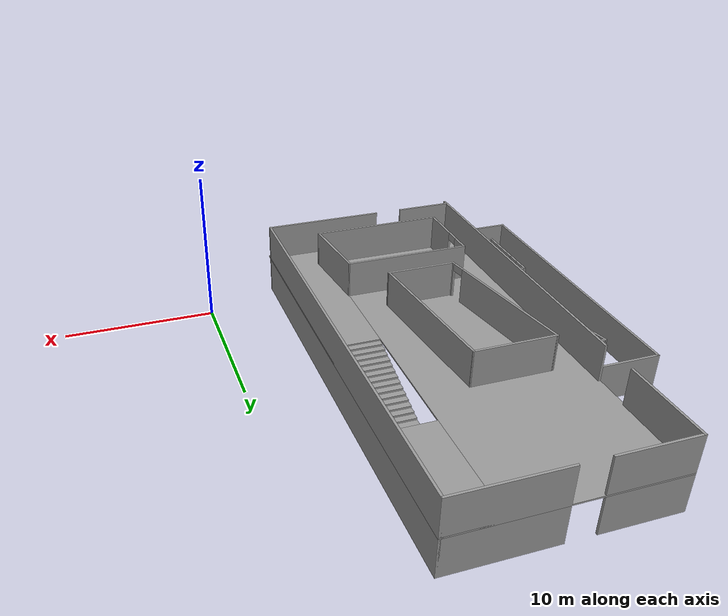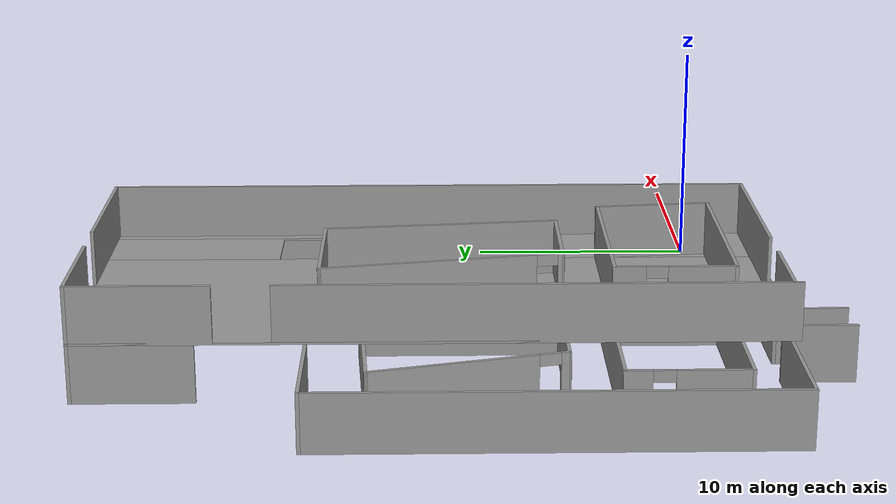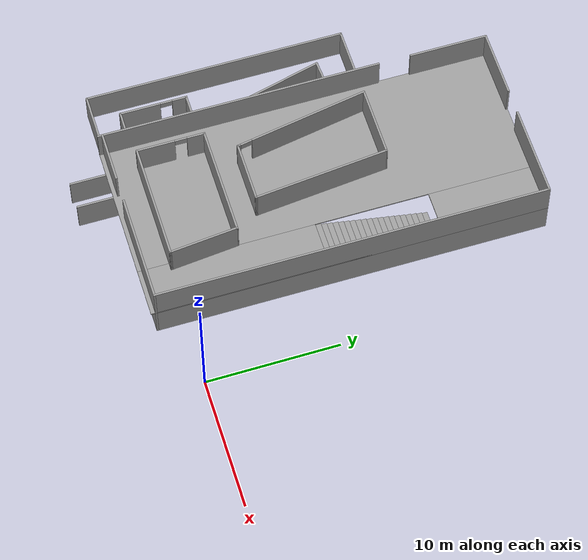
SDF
<?xml version='1.0'?>
<sdf version='1.6'>
  <model name='Building_37'>
    <pose frame=''>-14.375 11 0 0 -0 0</pose>
          <meta>
            <layer>0</layer>
          </meta>
    <link name='Floor_0'>
      <pose frame=''>2.5 1.3455 2.5 0 -0 0</pose>
      <visual name='Floor_0_Visual_0'>
        <pose frame=''>-1.7875 0 0.05 0 -0 0</pose>
        <geometry>
          <box>
            <size>10.325 29.459 0.1</size>
          </box>
        </geometry>
        <material>
          <script>
            <uri>file://media/materials/scripts/gazebo.material</uri>
            <name>Gazebo/Grey</name>
          </script>
          <ambient>1 1 1 1</ambient>
        </material>
      </visual>
      <collision name='Floor_0_Collision_0'>
        <geometry>
          <box>
            <size>10.325 29.459 0.1</size>
          </box>
        </geometry>
        <pose frame=''>-1.7875 0 0.05 0 -0 0</pose>
      </collision>
      <visual name='Floor_0_Visual_1'>
        <pose frame=''>5.1625 -8.1625 0.05 0 -0 0</pose>
        <geometry>
          <box>
            <size>3.575 13.134 0.1</size>
          </box>
        </geometry>
        <material>
          <script>
            <uri>file://media/materials/scripts/gazebo.material</uri>
            <name>Gazebo/Grey</name>
          </script>
          <ambient>1 1 1 1</ambient>
        </material>
      </visual>
      <collision name='Floor_0_Collision_1'>
        <geometry>
          <box>
            <size>3.575 13.134 0.1</size>
          </box>
        </geometry>
        <pose frame=''>5.1625 -8.1625 0.05 0 -0 0</pose>
      </collision>
      <visual name='Floor_0_Visual_2'>
        <pose frame=''>6.6625 6.567 0.05 0 -0 0</pose>
        <geometry>
          <box>
            <size>0.575 16.325 0.1</size>
          </box>
        </geometry>
        <material>
          <script>
            <uri>file://media/materials/scripts/gazebo.material</uri>
            <name>Gazebo/Grey</name>
          </script>
          <ambient>1 1 1 1</ambient>
        </material>
      </visual>
      <collision name='Floor_0_Collision_2'>
        <geometry>
          <box>
            <size>0.575 16.325 0.1</size>
          </box>
        </geometry>
        <pose frame=''>6.6625 6.567 0.05 0 -0 0</pose>
      </collision>
      <visual name='Floor_0_Visual_3'>
        <pose frame=''>4.875 10.817 0.05 0 -0 0</pose>
        <geometry>
          <box>
            <size>3 7.825 0.1</size>
          </box>
        </geometry>
        <material>
          <script>
            <uri>file://media/materials/scripts/gazebo.material</uri>
            <name>Gazebo/Grey</name>
          </script>
          <ambient>1 1 1 1</ambient>
        </material>
      </visual>
      <collision name='Floor_0_Collision_3'>
        <geometry>
          <box>
            <size>3 7.825 0.1</size>
          </box>
        </geometry>
        <pose frame=''>4.875 10.817 0.05 0 -0 0</pose>
      </collision>
    </link>
    <link name='Stairs_1'>
      <visual name='Stairs_1_Visual_0'>
        <pose frame=''>7.375 8.0375 0.0625 0 -0 0</pose>
        <geometry>
          <box>
            <size>3 0.425 0.125</size>
          </box>
        </geometry>
        <material>
          <script>
            <uri>file://media/materials/scripts/gazebo.material</uri>
            <name>Gazebo/Grey</name>
          </script>
          <ambient>1 1 1 1</ambient>
        </material>
      </visual>
      <collision name='Stairs_1_Collision_0'>
        <geometry>
          <box>
            <size>3 0.425 0.125</size>
          </box>
        </geometry>
        <pose frame=''>7.375 8.0375 0.0625 0 -0 0</pose>
      </collision>
      <visual name='Stairs_1_Visual_1'>
        <pose frame=''>7.375 7.6125 0.1875 0 -0 0</pose>
        <geometry>
          <box>
            <size>3 0.425 0.125</size>
          </box>
        </geometry>
        <material>
          <script>
            <uri>file://media/materials/scripts/gazebo.material</uri>
            <name>Gazebo/Grey</name>
          </script>
          <ambient>1 1 1 1</ambient>
        </material>
      </visual>
      <collision name='Stairs_1_Collision_1'>
        <geometry>
          <box>
            <size>3 0.425 0.125</size>
          </box>
        </geometry>
        <pose frame=''>7.375 7.6125 0.1875 0 -0 0</pose>
      </collision>
      <visual name='Stairs_1_Visual_2'>
        <pose frame=''>7.375 7.1875 0.3125 0 -0 0</pose>
        <geometry>
          <box>
            <size>3 0.425 0.125</size>
          </box>
        </geometry>
        <material>
          <script>
            <uri>file://media/materials/scripts/gazebo.material</uri>
            <name>Gazebo/Grey</name>
          </script>
          <ambient>1 1 1 1</ambient>
        </material>
      </visual>
      <collision name='Stairs_1_Collision_2'>
        <geometry>
          <box>
            <size>3 0.425 0.125</size>
          </box>
        </geometry>
        <pose frame=''>7.375 7.1875 0.3125 0 -0 0</pose>
      </collision>
      <visual name='Stairs_1_Visual_3'>
        <pose frame=''>7.375 6.7625 0.4375 0 -0 0</pose>
        <geometry>
          <box>
            <size>3 0.425 0.125</size>
          </box>
        </geometry>
        <material>
          <script>
            <uri>file://media/materials/scripts/gazebo.material</uri>
            <name>Gazebo/Grey</name>
          </script>
          <ambient>1 1 1 1</ambient>
        </material>
      </visual>
      <collision name='Stairs_1_Collision_3'>
        <geometry>
          <box>
            <size>3 0.425 0.125</size>
          </box>
        </geometry>
        <pose frame=''>7.375 6.7625 0.4375 0 -0 0</pose>
      </collision>
      <visual name='Stairs_1_Visual_4'>
        <pose frame=''>7.375 6.3375 0.5625 0 -0 0</pose>
        <geometry>
          <box>
            <size>3 0.425 0.125</size>
          </box>
        </geometry>
        <material>
          <script>
            <uri>file://media/materials/scripts/gazebo.material</uri>
            <name>Gazebo/Grey</name>
          </script>
          <ambient>1 1 1 1</ambient>
        </material>
      </visual>
      <collision name='Stairs_1_Collision_4'>
        <geometry>
          <box>
            <size>3 0.425 0.125</size>
          </box>
        </geometry>
        <pose frame=''>7.375 6.3375 0.5625 0 -0 0</pose>
      </collision>
      <visual name='Stairs_1_Visual_5'>
        <pose frame=''>7.375 5.9125 0.6875 0 -0 0</pose>
        <geometry>
          <box>
            <size>3 0.425 0.125</size>
          </box>
        </geometry>
        <material>
          <script>
            <uri>file://media/materials/scripts/gazebo.material</uri>
            <name>Gazebo/Grey</name>
          </script>
          <ambient>1 1 1 1</ambient>
        </material>
      </visual>
      <collision name='Stairs_1_Collision_5'>
        <geometry>
          <box>
            <size>3 0.425 0.125</size>
          </box>
        </geometry>
        <pose frame=''>7.375 5.9125 0.6875 0 -0 0</pose>
      </collision>
      <visual name='Stairs_1_Visual_6'>
        <pose frame=''>7.375 5.4875 0.8125 0 -0 0</pose>
        <geometry>
          <box>
            <size>3 0.425 0.125</size>
          </box>
        </geometry>
        <material>
          <script>
            <uri>file://media/materials/scripts/gazebo.material</uri>
            <name>Gazebo/Grey</name>
          </script>
          <ambient>1 1 1 1</ambient>
        </material>
      </visual>
      <collision name='Stairs_1_Collision_6'>
        <geometry>
          <box>
            <size>3 0.425 0.125</size>
          </box>
        </geometry>
        <pose frame=''>7.375 5.4875 0.8125 0 -0 0</pose>
      </collision>
      <visual name='Stairs_1_Visual_7'>
        <pose frame=''>7.375 5.0625 0.9375 0 -0 0</pose>
        <geometry>
          <box>
            <size>3 0.425 0.125</size>
          </box>
        </geometry>
        <material>
          <script>
            <uri>file://media/materials/scripts/gazebo.material</uri>
            <name>Gazebo/Grey</name>
          </script>
          <ambient>1 1 1 1</ambient>
        </material>
      </visual>
      <collision name='Stairs_1_Collision_7'>
        <geometry>
          <box>
            <size>3 0.425 0.125</size>
          </box>
        </geometry>
        <pose frame=''>7.375 5.0625 0.9375 0 -0 0</pose>
      </collision>
      <visual name='Stairs_1_Visual_8'>
        <pose frame=''>7.375 4.6375 1.0625 0 -0 0</pose>
        <geometry>
          <box>
            <size>3 0.425 0.125</size>
          </box>
        </geometry>
        <material>
          <script>
            <uri>file://media/materials/scripts/gazebo.material</uri>
            <name>Gazebo/Grey</name>
          </script>
          <ambient>1 1 1 1</ambient>
        </material>
      </visual>
      <collision name='Stairs_1_Collision_8'>
        <geometry>
          <box>
            <size>3 0.425 0.125</size>
          </box>
        </geometry>
        <pose frame=''>7.375 4.6375 1.0625 0 -0 0</pose>
      </collision>
      <visual name='Stairs_1_Visual_9'>
        <pose frame=''>7.375 4.2125 1.1875 0 -0 0</pose>
        <geometry>
          <box>
            <size>3 0.425 0.125</size>
          </box>
        </geometry>
        <material>
          <script>
            <uri>file://media/materials/scripts/gazebo.material</uri>
            <name>Gazebo/Grey</name>
          </script>
          <ambient>1 1 1 1</ambient>
        </material>
      </visual>
      <collision name='Stairs_1_Collision_9'>
        <geometry>
          <box>
            <size>3 0.425 0.125</size>
          </box>
        </geometry>
        <pose frame=''>7.375 4.2125 1.1875 0 -0 0</pose>
      </collision>
      <visual name='Stairs_1_Visual_10'>
        <pose frame=''>7.375 3.7875 1.3125 0 -0 0</pose>
        <geometry>
          <box>
            <size>3 0.425 0.125</size>
          </box>
        </geometry>
        <material>
          <script>
            <uri>file://media/materials/scripts/gazebo.material</uri>
            <name>Gazebo/Grey</name>
          </script>
          <ambient>1 1 1 1</ambient>
        </material>
      </visual>
      <collision name='Stairs_1_Collision_10'>
        <geometry>
          <box>
            <size>3 0.425 0.125</size>
          </box>
        </geometry>
        <pose frame=''>7.375 3.7875 1.3125 0 -0 0</pose>
      </collision>
      <visual name='Stairs_1_Visual_11'>
        <pose frame=''>7.375 3.3625 1.4375 0 -0 0</pose>
        <geometry>
          <box>
            <size>3 0.425 0.125</size>
          </box>
        </geometry>
        <material>
          <script>
            <uri>file://media/materials/scripts/gazebo.material</uri>
            <name>Gazebo/Grey</name>
          </script>
          <ambient>1 1 1 1</ambient>
        </material>
      </visual>
      <collision name='Stairs_1_Collision_11'>
        <geometry>
          <box>
            <size>3 0.425 0.125</size>
          </box>
        </geometry>
        <pose frame=''>7.375 3.3625 1.4375 0 -0 0</pose>
      </collision>
      <visual name='Stairs_1_Visual_12'>
        <pose frame=''>7.375 2.9375 1.5625 0 -0 0</pose>
        <geometry>
          <box>
            <size>3 0.425 0.125</size>
          </box>
        </geometry>
        <material>
          <script>
            <uri>file://media/materials/scripts/gazebo.material</uri>
            <name>Gazebo/Grey</name>
          </script>
          <ambient>1 1 1 1</ambient>
        </material>
      </visual>
      <collision name='Stairs_1_Collision_12'>
        <geometry>
          <box>
            <size>3 0.425 0.125</size>
          </box>
        </geometry>
        <pose frame=''>7.375 2.9375 1.5625 0 -0 0</pose>
      </collision>
      <visual name='Stairs_1_Visual_13'>
        <pose frame=''>7.375 2.5125 1.6875 0 -0 0</pose>
        <geometry>
          <box>
            <size>3 0.425 0.125</size>
          </box>
        </geometry>
        <material>
          <script>
            <uri>file://media/materials/scripts/gazebo.material</uri>
            <name>Gazebo/Grey</name>
          </script>
          <ambient>1 1 1 1</ambient>
        </material>
      </visual>
      <collision name='Stairs_1_Collision_13'>
        <geometry>
          <box>
            <size>3 0.425 0.125</size>
          </box>
        </geometry>
        <pose frame=''>7.375 2.5125 1.6875 0 -0 0</pose>
      </collision>
      <visual name='Stairs_1_Visual_14'>
        <pose frame=''>7.375 2.0875 1.8125 0 -0 0</pose>
        <geometry>
          <box>
            <size>3 0.425 0.125</size>
          </box>
        </geometry>
        <material>
          <script>
            <uri>file://media/materials/scripts/gazebo.material</uri>
            <name>Gazebo/Grey</name>
          </script>
          <ambient>1 1 1 1</ambient>
        </material>
      </visual>
      <collision name='Stairs_1_Collision_14'>
        <geometry>
          <box>
            <size>3 0.425 0.125</size>
          </box>
        </geometry>
        <pose frame=''>7.375 2.0875 1.8125 0 -0 0</pose>
      </collision>
      <visual name='Stairs_1_Visual_15'>
        <pose frame=''>7.375 1.6625 1.9375 0 -0 0</pose>
        <geometry>
          <box>
            <size>3 0.425 0.125</size>
          </box>
        </geometry>
        <material>
          <script>
            <uri>file://media/materials/scripts/gazebo.material</uri>
            <name>Gazebo/Grey</name>
          </script>
          <ambient>1 1 1 1</ambient>
        </material>
      </visual>
      <collision name='Stairs_1_Collision_15'>
        <geometry>
          <box>
            <size>3 0.425 0.125</size>
          </box>
        </geometry>
        <pose frame=''>7.375 1.6625 1.9375 0 -0 0</pose>
      </collision>
      <visual name='Stairs_1_Visual_16'>
        <pose frame=''>7.375 1.2375 2.0625 0 -0 0</pose>
        <geometry>
          <box>
            <size>3 0.425 0.125</size>
          </box>
        </geometry>
        <material>
          <script>
            <uri>file://media/materials/scripts/gazebo.material</uri>
            <name>Gazebo/Grey</name>
          </script>
          <ambient>1 1 1 1</ambient>
        </material>
      </visual>
      <collision name='Stairs_1_Collision_16'>
        <geometry>
          <box>
            <size>3 0.425 0.125</size>
          </box>
        </geometry>
        <pose frame=''>7.375 1.2375 2.0625 0 -0 0</pose>
      </collision>
      <visual name='Stairs_1_Visual_17'>
        <pose frame=''>7.375 0.8125 2.1875 0 -0 0</pose>
        <geometry>
          <box>
            <size>3 0.425 0.125</size>
          </box>
        </geometry>
        <material>
          <script>
            <uri>file://media/materials/scripts/gazebo.material</uri>
            <name>Gazebo/Grey</name>
          </script>
          <ambient>1 1 1 1</ambient>
        </material>
      </visual>
      <collision name='Stairs_1_Collision_17'>
        <geometry>
          <box>
            <size>3 0.425 0.125</size>
          </box>
        </geometry>
        <pose frame=''>7.375 0.8125 2.1875 0 -0 0</pose>
      </collision>
      <visual name='Stairs_1_Visual_18'>
        <pose frame=''>7.375 0.3875 2.3125 0 -0 0</pose>
        <geometry>
          <box>
            <size>3 0.425 0.125</size>
          </box>
        </geometry>
        <material>
          <script>
            <uri>file://media/materials/scripts/gazebo.material</uri>
            <name>Gazebo/Grey</name>
          </script>
          <ambient>1 1 1 1</ambient>
        </material>
      </visual>
      <collision name='Stairs_1_Collision_18'>
        <geometry>
          <box>
            <size>3 0.425 0.125</size>
          </box>
        </geometry>
        <pose frame=''>7.375 0.3875 2.3125 0 -0 0</pose>
      </collision>
      <visual name='Stairs_1_Visual_19'>
        <pose frame=''>7.375 -0.037501 2.4375 0 -0 0</pose>
        <geometry>
          <box>
            <size>3 0.425 0.125</size>
          </box>
        </geometry>
        <material>
          <script>
            <uri>file://media/materials/scripts/gazebo.material</uri>
            <name>Gazebo/Grey</name>
          </script>
          <ambient>1 1 1 1</ambient>
        </material>
      </visual>
      <collision name='Stairs_1_Collision_19'>
        <geometry>
          <box>
            <size>3 0.425 0.125</size>
          </box>
        </geometry>
        <pose frame=''>7.375 -0.037501 2.4375 0 -0 0</pose>
      </collision>
    </link>
    <link name='Wall_10'>
      <collision name='Wall_10_Collision'>
        <geometry>
          <box>
            <size>19.65 0.15 2.5</size>
          </box>
        </geometry>
        <pose frame=''>0 0 1.25 0 -0 0</pose>
      </collision>
      <visual name='Wall_10_Visual'>
        <pose frame=''>0 0 1.25 0 -0 0</pose>
        <geometry>
          <box>
            <size>19.65 0.15 2.5</size>
          </box>
        </geometry>
        <material>
          <script>
            <uri>file://media/materials/scripts/gazebo.material</uri>
            <name>Gazebo/Grey</name>
          </script>
          <ambient>1 1 1 1</ambient>
        </material>
      </visual>
      <pose frame=''>-9.375 -3.25 0 0 0 -1.5708</pose>
    </link>
    <link name='Wall_14'>
      <pose frame=''>-6.375 0 0 0 0 -1.32582</pose>
      <visual name='Wall_14_Visual_0'>
        <pose frame=''>-0.663599 0 1.25 0 -0 0</pose>
        <geometry>
          <box>
            <size>7.06901 0.15 2.5</size>
          </box>
        </geometry>
        <material>
          <script>
            <uri>file://media/materials/scripts/gazebo.material</uri>
            <name>Gazebo/Grey</name>
          </script>
          <ambient>1 1 1 1</ambient>
        </material>
      </visual>
      <collision name='Wall_14_Collision_0'>
        <geometry>
          <box>
            <size>7.06901 0.15 2.5</size>
          </box>
        </geometry>
        <pose frame=''>-0.663599 0 1.25 0 -0 0</pose>
      </collision>
      <visual name='Wall_14_Visual_1'>
        <pose frame=''>3.98451 0 1.25 0 -0 0</pose>
        <geometry>
          <box>
            <size>0.427197 0.15 2.5</size>
          </box>
        </geometry>
        <material>
          <script>
            <uri>file://media/materials/scripts/gazebo.material</uri>
            <name>Gazebo/Grey</name>
          </script>
          <ambient>1 1 1 1</ambient>
        </material>
      </visual>
      <collision name='Wall_14_Collision_1'>
        <geometry>
          <box>
            <size>0.427197 0.15 2.5</size>
          </box>
        </geometry>
        <pose frame=''>3.98451 0 1.25 0 -0 0</pose>
      </collision>
      <visual name='Wall_14_Visual_2'>
        <pose frame=''>3.32091 0 2.25 0 -0 0</pose>
        <geometry>
          <box>
            <size>0.9 0.15 0.5</size>
          </box>
        </geometry>
        <material>
          <script>
            <uri>file://media/materials/scripts/gazebo.material</uri>
            <name>Gazebo/Grey</name>
          </script>
          <ambient>1 1 1 1</ambient>
        </material>
      </visual>
      <collision name='Wall_14_Collision_2'>
        <geometry>
          <box>
            <size>0.9 0.15 0.5</size>
          </box>
        </geometry>
        <pose frame=''>3.32091 0 2.25 0 -0 0</pose>
      </collision>
    </link>
    <link name='Wall_15'>
      <collision name='Wall_15_Collision'>
        <geometry>
          <box>
            <size>6.15 0.15 2.5</size>
          </box>
        </geometry>
        <pose frame=''>0 0 1.25 0 -0 0</pose>
      </collision>
      <visual name='Wall_15_Visual'>
        <pose frame=''>0 0 1.25 0 -0 0</pose>
        <geometry>
          <box>
            <size>6.15 0.15 2.5</size>
          </box>
        </geometry>
        <material>
          <script>
            <uri>file://media/materials/scripts/gazebo.material</uri>
            <name>Gazebo/Grey</name>
          </script>
          <ambient>1 1 1 1</ambient>
        </material>
      </visual>
      <pose frame=''>-2.375 -4 0 0 -0 0</pose>
    </link>
    <link name='Wall_16'>
      <collision name='Wall_16_Collision'>
        <geometry>
          <box>
            <size>8.65 0.15 2.5</size>
          </box>
        </geometry>
        <pose frame=''>0 0 1.25 0 -0 0</pose>
      </collision>
      <visual name='Wall_16_Visual'>
        <pose frame=''>0 0 1.25 0 -0 0</pose>
        <geometry>
          <box>
            <size>8.65 0.15 2.5</size>
          </box>
        </geometry>
        <material>
          <script>
            <uri>file://media/materials/scripts/gazebo.material</uri>
            <name>Gazebo/Grey</name>
          </script>
          <ambient>1 1 1 1</ambient>
        </material>
      </visual>
      <pose frame=''>0.625 0.25 0 0 -0 1.5708</pose>
    </link>
    <link name='Wall_17'>
      <collision name='Wall_17_Collision'>
        <geometry>
          <box>
            <size>8.16561 0.15 2.5</size>
          </box>
        </geometry>
        <pose frame=''>0 0 1.25 0 -0 0</pose>
      </collision>
      <visual name='Wall_17_Visual'>
        <pose frame=''>0 0 1.25 0 -0 0</pose>
        <geometry>
          <box>
            <size>8.16561 0.15 2.5</size>
          </box>
        </geometry>
        <material>
          <script>
            <uri>file://media/materials/scripts/gazebo.material</uri>
            <name>Gazebo/Grey</name>
          </script>
          <ambient>1 1 1 1</ambient>
        </material>
      </visual>
      <pose frame=''>-3.375 4.25 0 0 0 -3.07917</pose>
    </link>
    <link name='Wall_19'>
      <collision name='Wall_19_Collision'>
        <geometry>
          <box>
            <size>9.15 0.15 2.5</size>
          </box>
        </geometry>
        <pose frame=''>0 0 1.25 0 -0 0</pose>
      </collision>
      <visual name='Wall_19_Visual'>
        <pose frame=''>0 0 1.25 0 -0 0</pose>
        <geometry>
          <box>
            <size>9.15 0.15 2.5</size>
          </box>
        </geometry>
        <material>
          <script>
            <uri>file://media/materials/scripts/gazebo.material</uri>
            <name>Gazebo/Grey</name>
          </script>
          <ambient>1 1 1 1</ambient>
        </material>
      </visual>
      <pose frame=''>-2.875 -6 0 0 -0 0</pose>
    </link>
    <link name='Wall_2'>
      <collision name='Wall_2_Collision'>
        <geometry>
          <box>
            <size>5.15 0.15 2.5</size>
          </box>
        </geometry>
        <pose frame=''>0 0 1.25 0 -0 0</pose>
      </collision>
      <visual name='Wall_2_Visual'>
        <pose frame=''>0 0 1.25 0 -0 0</pose>
        <geometry>
          <box>
            <size>5.15 0.15 2.5</size>
          </box>
        </geometry>
        <material>
          <script>
            <uri>file://media/materials/scripts/gazebo.material</uri>
            <name>Gazebo/Grey</name>
          </script>
          <ambient>1 1 1 1</ambient>
        </material>
      </visual>
      <pose frame=''>-4.375 13.5 0 0 0 -1.5708</pose>
    </link>
    <link name='Wall_20'>
      <collision name='Wall_20_Collision'>
        <geometry>
          <box>
            <size>5.15 0.15 2.5</size>
          </box>
        </geometry>
        <pose frame=''>0 0 1.25 0 -0 0</pose>
      </collision>
      <visual name='Wall_20_Visual'>
        <pose frame=''>0 0 1.25 0 -0 0</pose>
        <geometry>
          <box>
            <size>5.15 0.15 2.5</size>
          </box>
        </geometry>
        <material>
          <script>
            <uri>file://media/materials/scripts/gazebo.material</uri>
            <name>Gazebo/Grey</name>
          </script>
          <ambient>1 1 1 1</ambient>
        </material>
      </visual>
      <pose frame=''>1.625 -8.5 0 0 0 -1.5708</pose>
    </link>
    <link name='Wall_21'>
      <collision name='Wall_21_Collision'>
        <geometry>
          <box>
            <size>9.15 0.15 2.5</size>
          </box>
        </geometry>
        <pose frame=''>0 0 1.25 0 -0 0</pose>
      </collision>
      <visual name='Wall_21_Visual'>
        <pose frame=''>0 0 1.25 0 -0 0</pose>
        <geometry>
          <box>
            <size>9.15 0.15 2.5</size>
          </box>
        </geometry>
        <material>
          <script>
            <uri>file://media/materials/scripts/gazebo.material</uri>
            <name>Gazebo/Grey</name>
          </script>
          <ambient>1 1 1 1</ambient>
        </material>
      </visual>
      <pose frame=''>-2.875 -11 0 0 -0 3.14159</pose>
    </link>
    <link name='Wall_22'>
      <pose frame=''>-7.375 -8.5 0 0 -0 1.5708</pose>
      <visual name='Wall_22_Visual_0'>
        <pose frame=''>-1.02932 0 1.25 0 -0 0</pose>
        <geometry>
          <box>
            <size>3.09135 0.15 2.5</size>
          </box>
        </geometry>
        <material>
          <script>
            <uri>file://media/materials/scripts/gazebo.material</uri>
            <name>Gazebo/Grey</name>
          </script>
          <ambient>1 1 1 1</ambient>
        </material>
      </visual>
      <collision name='Wall_22_Collision_0'>
        <geometry>
          <box>
            <size>3.09135 0.15 2.5</size>
          </box>
        </geometry>
        <pose frame=''>-1.02932 0 1.25 0 -0 0</pose>
      </collision>
      <visual name='Wall_22_Visual_1'>
        <pose frame=''>1.99568 0 1.25 0 -0 0</pose>
        <geometry>
          <box>
            <size>1.15865 0.15 2.5</size>
          </box>
        </geometry>
        <material>
          <script>
            <uri>file://media/materials/scripts/gazebo.material</uri>
            <name>Gazebo/Grey</name>
          </script>
          <ambient>1 1 1 1</ambient>
        </material>
      </visual>
      <collision name='Wall_22_Collision_1'>
        <geometry>
          <box>
            <size>1.15865 0.15 2.5</size>
          </box>
        </geometry>
        <pose frame=''>1.99568 0 1.25 0 -0 0</pose>
      </collision>
      <visual name='Wall_22_Visual_2'>
        <pose frame=''>0.966352 0 2.25 0 -0 0</pose>
        <geometry>
          <box>
            <size>0.9 0.15 0.5</size>
          </box>
        </geometry>
        <material>
          <script>
            <uri>file://media/materials/scripts/gazebo.material</uri>
            <name>Gazebo/Grey</name>
          </script>
          <ambient>1 1 1 1</ambient>
        </material>
      </visual>
      <collision name='Wall_22_Collision_2'>
        <geometry>
          <box>
            <size>0.9 0.15 0.5</size>
          </box>
        </geometry>
        <pose frame=''>0.966352 0 2.25 0 -0 0</pose>
      </collision>
    </link>
    <link name='Wall_24'>
      <collision name='Wall_24_Collision'>
        <geometry>
          <box>
            <size>29.15 0.15 2.5</size>
          </box>
        </geometry>
        <pose frame=''>0 0 1.25 0 -0 0</pose>
      </collision>
      <visual name='Wall_24_Visual'>
        <pose frame=''>0 0 1.25 0 -0 0</pose>
        <geometry>
          <box>
            <size>29.15 0.15 2.5</size>
          </box>
        </geometry>
        <material>
          <script>
            <uri>file://media/materials/scripts/gazebo.material</uri>
            <name>Gazebo/Grey</name>
          </script>
          <ambient>1 1 1 1</ambient>
        </material>
      </visual>
      <pose frame=''>9.375 1.5 0 0 0 -1.5708</pose>
    </link>
    <link name='Wall_27'>
      <collision name='Wall_27_Collision'>
        <geometry>
          <box>
            <size>6.9 0.15 2.5</size>
          </box>
        </geometry>
        <pose frame=''>0 0 1.25 0 -0 0</pose>
      </collision>
      <visual name='Wall_27_Visual'>
        <pose frame=''>0 0 1.25 0 -0 0</pose>
        <geometry>
          <box>
            <size>6.9 0.15 2.5</size>
          </box>
        </geometry>
        <material>
          <script>
            <uri>file://media/materials/scripts/gazebo.material</uri>
            <name>Gazebo/Grey</name>
          </script>
          <ambient>1 1 1 1</ambient>
        </material>
      </visual>
      <pose frame=''>-6 -13 0 0 -0 0</pose>
    </link>
    <link name='Wall_28'>
      <collision name='Wall_28_Collision'>
        <geometry>
          <box>
            <size>3.15 0.15 2.5</size>
          </box>
        </geometry>
        <pose frame=''>0 0 1.25 0 -0 0</pose>
      </collision>
      <visual name='Wall_28_Visual'>
        <pose frame=''>0 0 1.25 0 -0 0</pose>
        <geometry>
          <box>
            <size>3.15 0.15 2.5</size>
          </box>
        </geometry>
        <material>
          <script>
            <uri>file://media/materials/scripts/gazebo.material</uri>
            <name>Gazebo/Grey</name>
          </script>
          <ambient>1 1 1 1</ambient>
        </material>
      </visual>
      <pose frame=''>-2.625 -14.5 0 0 0 -1.5708</pose>
    </link>
    <link name='Wall_30'>
      <collision name='Wall_30_Collision'>
        <geometry>
          <box>
            <size>10.15 0.15 2.5</size>
          </box>
        </geometry>
        <pose frame=''>0 0 1.25 0 -0 0</pose>
      </collision>
      <visual name='Wall_30_Visual'>
        <pose frame=''>0 0 1.25 0 -0 0</pose>
        <geometry>
          <box>
            <size>10.15 0.15 2.5</size>
          </box>
        </geometry>
        <material>
          <script>
            <uri>file://media/materials/scripts/gazebo.material</uri>
            <name>Gazebo/Grey</name>
          </script>
          <ambient>1 1 1 1</ambient>
        </material>
      </visual>
      <pose frame=''>4.375 -13 0 0 -0 3.14159</pose>
    </link>
    <link name='Wall_31'>
      <collision name='Wall_31_Collision'>
        <geometry>
          <box>
            <size>3.15 0.15 2.5</size>
          </box>
        </geometry>
        <pose frame=''>0 0 1.25 0 -0 0</pose>
      </collision>
      <visual name='Wall_31_Visual'>
        <pose frame=''>0 0 1.25 0 -0 0</pose>
        <geometry>
          <box>
            <size>3.15 0.15 2.5</size>
          </box>
        </geometry>
        <material>
          <script>
            <uri>file://media/materials/scripts/gazebo.material</uri>
            <name>Gazebo/Grey</name>
          </script>
          <ambient>1 1 1 1</ambient>
        </material>
      </visual>
      <pose frame=''>-0.625 -14.5 0 0 0 -1.5708</pose>
    </link>
    <link name='Wall_33'>
      <collision name='Wall_33_Collision'>
        <geometry>
          <box>
            <size>5.9 0.15 2.5</size>
          </box>
        </geometry>
        <pose frame=''>0 0 1.25 0 -0 0</pose>
      </collision>
      <visual name='Wall_33_Visual'>
        <pose frame=''>0 0 1.25 0 -0 0</pose>
        <geometry>
          <box>
            <size>5.9 0.15 2.5</size>
          </box>
        </geometry>
        <material>
          <script>
            <uri>file://media/materials/scripts/gazebo.material</uri>
            <name>Gazebo/Grey</name>
          </script>
          <ambient>1 1 1 1</ambient>
        </material>
      </visual>
      <pose frame=''>-4.375 13.125 2.5 0 0 -1.5708</pose>
    </link>
    <link name='Wall_34'>
      <collision name='Wall_34_Collision'>
        <geometry>
          <box>
            <size>5.15 0.15 2.5</size>
          </box>
        </geometry>
        <pose frame=''>0 0 1.25 0 -0 0</pose>
      </collision>
      <visual name='Wall_34_Visual'>
        <pose frame=''>0 0 1.25 0 -0 0</pose>
        <geometry>
          <box>
            <size>5.15 0.15 2.5</size>
          </box>
        </geometry>
        <material>
          <script>
            <uri>file://media/materials/scripts/gazebo.material</uri>
            <name>Gazebo/Grey</name>
          </script>
          <ambient>1 1 1 1</ambient>
        </material>
      </visual>
      <pose frame=''>-1.875 16 2.5 0 -0 0</pose>
    </link>
    <link name='Wall_35'>
      <collision name='Wall_35_Collision'>
        <geometry>
          <box>
            <size>6.9 0.15 2.5</size>
          </box>
        </geometry>
        <pose frame=''>0 0 1.25 0 -0 0</pose>
      </collision>
      <visual name='Wall_35_Visual'>
        <pose frame=''>0 0 1.25 0 -0 0</pose>
        <geometry>
          <box>
            <size>6.9 0.15 2.5</size>
          </box>
        </geometry>
        <material>
          <script>
            <uri>file://media/materials/scripts/gazebo.material</uri>
            <name>Gazebo/Grey</name>
          </script>
          <ambient>1 1 1 1</ambient>
        </material>
      </visual>
      <pose frame=''>6 16 2.5 0 -0 0</pose>
    </link>
    <link name='Wall_37'>
      <collision name='Wall_37_Collision'>
        <geometry>
          <box>
            <size>21.209 0.15 2.5</size>
          </box>
        </geometry>
        <pose frame=''>0 0 1.25 0 -0 0</pose>
      </collision>
      <visual name='Wall_37_Visual'>
        <pose frame=''>0 0 1.25 0 -0 0</pose>
        <geometry>
          <box>
            <size>21.209 0.15 2.5</size>
          </box>
        </geometry>
        <material>
          <script>
            <uri>file://media/materials/scripts/gazebo.material</uri>
            <name>Gazebo/Grey</name>
          </script>
          <ambient>1 1 1 1</ambient>
        </material>
      </visual>
      <pose frame=''>-4.375 -2.7795 2.5 0 0 -1.5708</pose>
    </link>
    <link name='Wall_38'>
      <pose frame=''>-1.5 1 2.5 0 0 -1.39755</pose>
      <visual name='Wall_38_Visual_0'>
        <pose frame=''>-0.58726 0 1.25 0 -0 0</pose>
        <geometry>
          <box>
            <size>9.12745 0.15 2.5</size>
          </box>
        </geometry>
        <material>
          <script>
            <uri>file://media/materials/scripts/gazebo.material</uri>
            <name>Gazebo/Grey</name>
          </script>
          <ambient>1 1 1 1</ambient>
        </material>
      </visual>
      <collision name='Wall_38_Collision_0'>
        <geometry>
          <box>
            <size>9.12745 0.15 2.5</size>
          </box>
        </geometry>
        <pose frame=''>-0.58726 0 1.25 0 -0 0</pose>
      </collision>
      <visual name='Wall_38_Visual_1'>
        <pose frame=''>5.01372 0 1.25 0 -0 0</pose>
        <geometry>
          <box>
            <size>0.274521 0.15 2.5</size>
          </box>
        </geometry>
        <material>
          <script>
            <uri>file://media/materials/scripts/gazebo.material</uri>
            <name>Gazebo/Grey</name>
          </script>
          <ambient>1 1 1 1</ambient>
        </material>
      </visual>
      <collision name='Wall_38_Collision_1'>
        <geometry>
          <box>
            <size>0.274521 0.15 2.5</size>
          </box>
        </geometry>
        <pose frame=''>5.01372 0 1.25 0 -0 0</pose>
      </collision>
      <visual name='Wall_38_Visual_2'>
        <pose frame=''>4.42646 0 2.25 0 -0 0</pose>
        <geometry>
          <box>
            <size>0.9 0.15 0.5</size>
          </box>
        </geometry>
        <material>
          <script>
            <uri>file://media/materials/scripts/gazebo.material</uri>
            <name>Gazebo/Grey</name>
          </script>
          <ambient>1 1 1 1</ambient>
        </material>
      </visual>
      <collision name='Wall_38_Collision_2'>
        <geometry>
          <box>
            <size>0.9 0.15 0.5</size>
          </box>
        </geometry>
        <pose frame=''>4.42646 0 2.25 0 -0 0</pose>
      </collision>
    </link>
    <link name='Wall_39'>
      <collision name='Wall_39_Collision'>
        <geometry>
          <box>
            <size>4.65 0.15 2.5</size>
          </box>
        </geometry>
        <pose frame=''>0 0 1.25 0 -0 0</pose>
      </collision>
      <visual name='Wall_39_Visual'>
        <pose frame=''>0 0 1.25 0 -0 0</pose>
        <geometry>
          <box>
            <size>4.65 0.15 2.5</size>
          </box>
        </geometry>
        <material>
          <script>
            <uri>file://media/materials/scripts/gazebo.material</uri>
            <name>Gazebo/Grey</name>
          </script>
          <ambient>1 1 1 1</ambient>
        </material>
      </visual>
      <pose frame=''>1.625 -4 2.5 0 -0 0</pose>
    </link>
    <link name='Wall_4'>
      <collision name='Wall_4_Collision'>
        <geometry>
          <box>
            <size>5.15 0.15 2.5</size>
          </box>
        </geometry>
        <pose frame=''>0 0 1.25 0 -0 0</pose>
      </collision>
      <visual name='Wall_4_Visual'>
        <pose frame=''>0 0 1.25 0 -0 0</pose>
        <geometry>
          <box>
            <size>5.15 0.15 2.5</size>
          </box>
        </geometry>
        <material>
          <script>
            <uri>file://media/materials/scripts/gazebo.material</uri>
            <name>Gazebo/Grey</name>
          </script>
          <ambient>1 1 1 1</ambient>
        </material>
      </visual>
      <pose frame=''>-1.875 16 0 0 -0 0</pose>
    </link>
    <link name='Wall_40'>
      <collision name='Wall_40_Collision'>
        <geometry>
          <box>
            <size>10.1999 0.15 2.5</size>
          </box>
        </geometry>
        <pose frame=''>0 0 1.25 0 -0 0</pose>
      </collision>
      <visual name='Wall_40_Visual'>
        <pose frame=''>0 0 1.25 0 -0 0</pose>
        <geometry>
          <box>
            <size>10.1999 0.15 2.5</size>
          </box>
        </geometry>
        <material>
          <script>
            <uri>file://media/materials/scripts/gazebo.material</uri>
            <name>Gazebo/Grey</name>
          </script>
          <ambient>1 1 1 1</ambient>
        </material>
      </visual>
      <pose frame=''>3.375 1 2.5 0 -0 1.67047</pose>
    </link>
    <link name='Wall_41'>
      <collision name='Wall_41_Collision'>
        <geometry>
          <box>
            <size>5.4 0.15 2.5</size>
          </box>
        </geometry>
        <pose frame=''>0 0 1.25 0 -0 0</pose>
      </collision>
      <visual name='Wall_41_Visual'>
        <pose frame=''>0 0 1.25 0 -0 0</pose>
        <geometry>
          <box>
            <size>5.4 0.15 2.5</size>
          </box>
        </geometry>
        <material>
          <script>
            <uri>file://media/materials/scripts/gazebo.material</uri>
            <name>Gazebo/Grey</name>
          </script>
          <ambient>1 1 1 1</ambient>
        </material>
      </visual>
      <pose frame=''>0.25 6 2.5 0 -0 3.14159</pose>
    </link>
    <link name='Wall_42'>
      <collision name='Wall_42_Collision'>
        <geometry>
          <box>
            <size>8.4 0.15 2.5</size>
          </box>
        </geometry>
        <pose frame=''>0 0 1.25 0 -0 0</pose>
      </collision>
      <visual name='Wall_42_Visual'>
        <pose frame=''>0 0 1.25 0 -0 0</pose>
        <geometry>
          <box>
            <size>8.4 0.15 2.5</size>
          </box>
        </geometry>
        <material>
          <script>
            <uri>file://media/materials/scripts/gazebo.material</uri>
            <name>Gazebo/Grey</name>
          </script>
          <ambient>1 1 1 1</ambient>
        </material>
      </visual>
      <pose frame=''>1.75 -6 2.5 0 -0 0</pose>
    </link>
    <link name='Wall_43'>
      <collision name='Wall_43_Collision'>
        <geometry>
          <box>
            <size>5.17494 0.15 2.5</size>
          </box>
        </geometry>
        <pose frame=''>0 0 1.25 0 -0 0</pose>
      </collision>
      <visual name='Wall_43_Visual'>
        <pose frame=''>0 0 1.25 0 -0 0</pose>
        <geometry>
          <box>
            <size>5.17494 0.15 2.5</size>
          </box>
        </geometry>
        <material>
          <script>
            <uri>file://media/materials/scripts/gazebo.material</uri>
            <name>Gazebo/Grey</name>
          </script>
          <ambient>1 1 1 1</ambient>
        </material>
      </visual>
      <pose frame=''>6.125 -8.5 2.5 0 0 -1.47113</pose>
    </link>
    <link name='Wall_44'>
      <collision name='Wall_44_Collision'>
        <geometry>
          <box>
            <size>8.9 0.15 2.5</size>
          </box>
        </geometry>
        <pose frame=''>0 0 1.25 0 -0 0</pose>
      </collision>
      <visual name='Wall_44_Visual'>
        <pose frame=''>0 0 1.25 0 -0 0</pose>
        <geometry>
          <box>
            <size>8.9 0.15 2.5</size>
          </box>
        </geometry>
        <material>
          <script>
            <uri>file://media/materials/scripts/gazebo.material</uri>
            <name>Gazebo/Grey</name>
          </script>
          <ambient>1 1 1 1</ambient>
        </material>
      </visual>
      <pose frame=''>2 -11 2.5 0 -0 3.14159</pose>
    </link>
    <link name='Wall_45'>
      <pose frame=''>-2.375 -8.5 2.5 0 -0 1.5708</pose>
      <visual name='Wall_45_Visual_0'>
        <pose frame=''>-1.13354 0 1.25 0 -0 0</pose>
        <geometry>
          <box>
            <size>2.88293 0.15 2.5</size>
          </box>
        </geometry>
        <material>
          <script>
            <uri>file://media/materials/scripts/gazebo.material</uri>
            <name>Gazebo/Grey</name>
          </script>
          <ambient>1 1 1 1</ambient>
        </material>
      </visual>
      <collision name='Wall_45_Collision_0'>
        <geometry>
          <box>
            <size>2.88293 0.15 2.5</size>
          </box>
        </geometry>
        <pose frame=''>-1.13354 0 1.25 0 -0 0</pose>
      </collision>
      <visual name='Wall_45_Visual_1'>
        <pose frame=''>1.89146 0 1.25 0 -0 0</pose>
        <geometry>
          <box>
            <size>1.36708 0.15 2.5</size>
          </box>
        </geometry>
        <material>
          <script>
            <uri>file://media/materials/scripts/gazebo.material</uri>
            <name>Gazebo/Grey</name>
          </script>
          <ambient>1 1 1 1</ambient>
        </material>
      </visual>
      <collision name='Wall_45_Collision_1'>
        <geometry>
          <box>
            <size>1.36708 0.15 2.5</size>
          </box>
        </geometry>
        <pose frame=''>1.89146 0 1.25 0 -0 0</pose>
      </collision>
      <visual name='Wall_45_Visual_2'>
        <pose frame=''>0.757925 0 2.25 0 -0 0</pose>
        <geometry>
          <box>
            <size>0.9 0.15 0.5</size>
          </box>
        </geometry>
        <material>
          <script>
            <uri>file://media/materials/scripts/gazebo.material</uri>
            <name>Gazebo/Grey</name>
          </script>
          <ambient>1 1 1 1</ambient>
        </material>
      </visual>
      <collision name='Wall_45_Collision_2'>
        <geometry>
          <box>
            <size>0.9 0.15 0.5</size>
          </box>
        </geometry>
        <pose frame=''>0.757925 0 2.25 0 -0 0</pose>
      </collision>
    </link>
    <link name='Wall_46'>
      <collision name='Wall_46_Collision'>
        <geometry>
          <box>
            <size>29.15 0.15 2.5</size>
          </box>
        </geometry>
        <pose frame=''>0 0 1.25 0 -0 0</pose>
      </collision>
      <visual name='Wall_46_Visual'>
        <pose frame=''>0 0 1.25 0 -0 0</pose>
        <geometry>
          <box>
            <size>29.15 0.15 2.5</size>
          </box>
        </geometry>
        <material>
          <script>
            <uri>file://media/materials/scripts/gazebo.material</uri>
            <name>Gazebo/Grey</name>
          </script>
          <ambient>1 1 1 1</ambient>
        </material>
      </visual>
      <pose frame=''>9.375 1.5 2.5 0 0 -1.5708</pose>
    </link>
    <link name='Wall_47'>
      <collision name='Wall_47_Collision'>
        <geometry>
          <box>
            <size>3.9 0.15 2.5</size>
          </box>
        </geometry>
        <pose frame=''>0 0 1.25 0 -0 0</pose>
      </collision>
      <visual name='Wall_47_Visual'>
        <pose frame=''>0 0 1.25 0 -0 0</pose>
        <geometry>
          <box>
            <size>3.9 0.15 2.5</size>
          </box>
        </geometry>
        <material>
          <script>
            <uri>file://media/materials/scripts/gazebo.material</uri>
            <name>Gazebo/Grey</name>
          </script>
          <ambient>1 1 1 1</ambient>
        </material>
      </visual>
      <pose frame=''>-2.5 -13 2.5 0 -0 0</pose>
    </link>
    <link name='Wall_49'>
      <collision name='Wall_49_Collision'>
        <geometry>
          <box>
            <size>8.15 0.15 2.5</size>
          </box>
        </geometry>
        <pose frame=''>0 0 1.25 0 -0 0</pose>
      </collision>
      <visual name='Wall_49_Visual'>
        <pose frame=''>0 0 1.25 0 -0 0</pose>
        <geometry>
          <box>
            <size>8.15 0.15 2.5</size>
          </box>
        </geometry>
        <material>
          <script>
            <uri>file://media/materials/scripts/gazebo.material</uri>
            <name>Gazebo/Grey</name>
          </script>
          <ambient>1 1 1 1</ambient>
        </material>
      </visual>
      <pose frame=''>5.375 -13 2.5 0 -0 3.14159</pose>
    </link>
    <link name='Wall_6'>
      <collision name='Wall_6_Collision'>
        <geometry>
          <box>
            <size>6.9 0.15 2.5</size>
          </box>
        </geometry>
        <pose frame=''>0 0 1.25 0 -0 0</pose>
      </collision>
      <visual name='Wall_6_Visual'>
        <pose frame=''>0 0 1.25 0 -0 0</pose>
        <geometry>
          <box>
            <size>6.9 0.15 2.5</size>
          </box>
        </geometry>
        <material>
          <script>
            <uri>file://media/materials/scripts/gazebo.material</uri>
            <name>Gazebo/Grey</name>
          </script>
          <ambient>1 1 1 1</ambient>
        </material>
      </visual>
      <pose frame=''>6 16 0 0 -0 0</pose>
    </link>
    <link name='Wall_8'>
      <collision name='Wall_8_Collision'>
        <geometry>
          <box>
            <size>5.15 0.15 2.5</size>
          </box>
        </geometry>
        <pose frame=''>0 0 1.25 0 -0 0</pose>
      </collision>
      <visual name='Wall_8_Visual'>
        <pose frame=''>0 0 1.25 0 -0 0</pose>
        <geometry>
          <box>
            <size>5.15 0.15 2.5</size>
          </box>
        </geometry>
        <material>
          <script>
            <uri>file://media/materials/scripts/gazebo.material</uri>
            <name>Gazebo/Grey</name>
          </script>
          <ambient>1 1 1 1</ambient>
        </material>
      </visual>
      <pose frame=''>-6.875 6.5 0 0 -0 3.14159</pose>
    </link>
    <static>1</static>
  </model>
</sdf>
